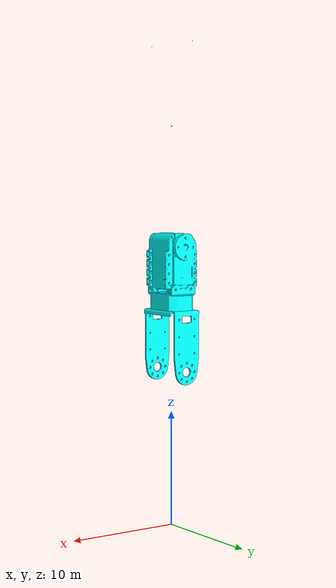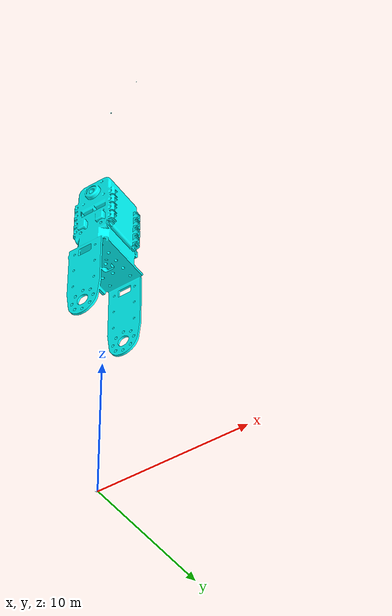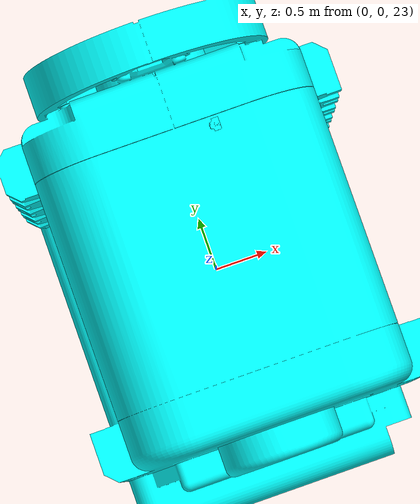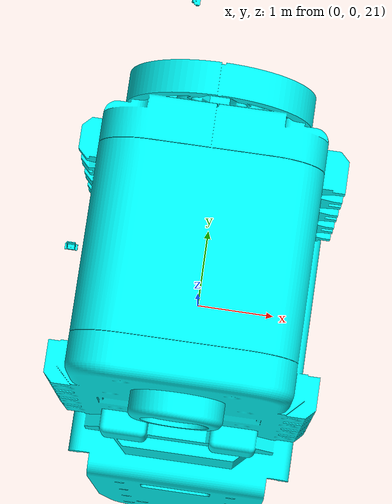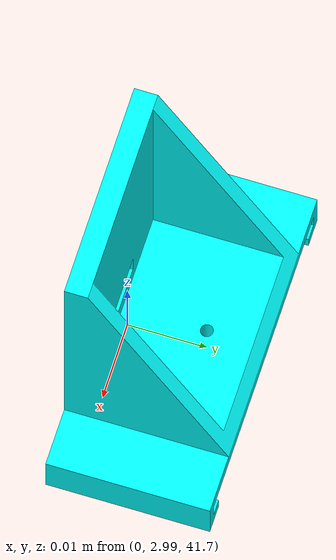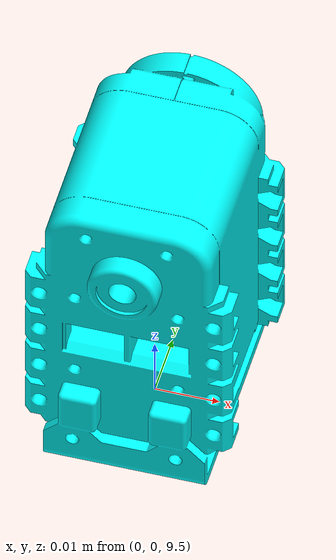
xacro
<?xml version="1.0" ?>

<robot name="phantomX" xmlns:xacro="http://www.ros.org/wiki/xacro">

  <!-- Include -->
  <xacro:include filename="$(find interm_proyect_robotics)/urdf/link_joints.xacro" />
  <xacro:include filename="$(find interm_proyect_robotics)/urdf/robot_parametros.xacro" />
  <!-- END - Include -->

  <!-- Robot description -->

  <link name="base_link">

  </link>

  <joint name="joint_name" type="fixed">
    <parent link="base_link"/>
    <child link="${link_00_name}"/>
    <origin xyz="0.0 0.0 0.0" rpy="0.0 0.0 0.0"/>
  </joint>

  <xacro:m_link_mesh name="${link_00_name}"
    origin_xyz="0 0 0"
    origin_rpy="0 0 0"
    meshfile="package://interm_proyect_robotics/models/pincher/PincherBase_v8.stl"
    mass="15"
    ixx="0.001" ixy="0" ixz="0"
    iyy="0.002" iyz="0"
    izz="0.001"
  />
<!--mass="0.335"  -->
  <xacro:m_joint name="${joint_01_name}"
    type="revolute"
    axis_xyz="0 0 1"
    origin_rpy="0 0 0" origin_xyz="0 0 9.5"
    parent="${link_00_name}" child="${link_01_name}"
    limit_e="100" limit_l="-3.14" limit_u="3.14" limit_v="0.5"
  />

  <xacro:m_link_mesh name="${link_01_name}"
    origin_xyz="0 0 0"
    origin_rpy="0 0 0"
    meshfile="package://interm_proyect_robotics/models/pincher/ShoulderServo_v5.stl"
    mass="0.118"
    ixx="0.00" ixy="0" ixz="0"
    iyy="0.00" iyz="0"
    izz="0.00"
  />
  <xacro:m_joint name="${joint_02_name}"
    type="revolute"
    axis_xyz="0 1 0"
    origin_rpy="0 0 0" origin_xyz="0 0 4.2"
    parent="${link_01_name}" child="${link_02_name}"
    limit_e="100" limit_l="-2.2" limit_u="2.4" limit_v="0.5"
  />

  <xacro:m_link_mesh name="${link_02_name}"
    origin_xyz="0 0 0"
    origin_rpy="0 0 0"
    meshfile="package://interm_proyect_robotics/models/pincher/LowerArm_v2.stl"
    mass="0.162"
    ixx="0.0001" ixy="0" ixz="0"
    iyy="0.0001" iyz="0"
    izz="0.0"
  />
  <xacro:m_joint name="${joint_03_name}"
    type="revolute"
    axis_xyz="0 1 0"
    origin_rpy="0 0 0" origin_xyz="0 0 10.5"
    parent="${link_02_name}" child="${link_03_name}"
    limit_e="100" limit_l="-2.6" limit_u="2.6" limit_v="0.5"
  />

  <xacro:m_link_mesh name="${link_03_name}"
    origin_xyz="0 0 0"
    origin_rpy="0 0 0"
    meshfile="package://interm_proyect_robotics/models/pincher/UpperArm_v2.stl"
    mass="0.162"
    ixx="0.0001" ixy="0" ixz="0"
    iyy="0.0001" iyz="0"
    izz="0.0"
  />
  <xacro:m_joint name="${joint_04_name}"
    type="revolute"
    axis_xyz="0 1 0"
    origin_rpy="0 0 0" origin_xyz="0 0 10.5"
    parent="${link_03_name}" child="${link_04_name}"
    limit_e="100" limit_l="-1.9" limit_u="1.8" limit_v="0.5"
  />

  <xacro:m_link_mesh name="${link_04_name}"
    origin_xyz="0 0 0"
    origin_rpy="0 0 0"
    meshfile="package://interm_proyect_robotics/models/pincher/GripperBody_v4.stl"
    mass="0.160"
    ixx="0.0" ixy="0" ixz="0"
    iyy="0.0" iyz="0"
    izz="0.0"
  />

  <xacro:m_joint name="${joint_05_name}"
    type="prismatic"
    axis_xyz="0 1 0"
    origin_rpy="0 0 0" origin_xyz="0 -3 7"
    parent="${link_04_name}" child="${link_05_name}"
    limit_e="10" limit_l="0" limit_u="1.6" limit_v="5.0"
  />

  <xacro:m_link_mesh name="${link_05_name}"
    origin_xyz="0 0 0"
    origin_rpy="0 0 0"
    meshfile="package://interm_proyect_robotics/models/pincher/LeftFinger_v2.stl"
    mass="0.018"
    ixx="0.0" ixy="0" ixz="0"
    iyy="0.0" iyz="0"
    izz="0.0"
  />
  <xacro:m_joint_mimic name="${joint_06_name}"
    type="prismatic"
    axis_xyz="0 1 0"
    origin_rpy="0 0 3.14" origin_xyz="0 3 7"
    parent="${link_04_name}" child="${link_06_name}"
    limit_e="100" limit_l="0" limit_u="1.6" limit_v="0.5"
    mimic_joint="${joint_05_name}" m_multiplier="1" m_offset="0"
  />

  <xacro:m_link_mesh name="${link_06_name}"
    origin_xyz="0 0 0"
    origin_rpy="0 0 0"
    meshfile="package://interm_proyect_robotics/models/pincher/LeftFinger_v2.stl"
    mass="0.018"
    ixx="0.0" ixy="0" ixz="0"
    iyy="0.0" iyz="0"
    izz="0.0"
  />

   <!-- Gazebo Plugin -->
  <gazebo>
    <plugin name="gazebo_ros_control" filename="libgazebo_ros_control.so">
    </plugin>
  </gazebo>

  <!-- END - Robot description -->

</robot>

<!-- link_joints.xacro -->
<robot xmlns:xacro="http://www.ros.org/wiki/xacro">

 <xacro:macro name="m_joint" params="name type axis_xyz origin_rpy origin_xyz parent child limit_e limit_l limit_u limit_v">
    <joint name="${name}" type="${type}">
      <axis xyz="${axis_xyz}" />
      <limit effort="${limit_e}" lower="${limit_l}" upper="${limit_u}" velocity="${limit_v}" />
      <origin rpy="${origin_rpy}" xyz="${origin_xyz}" />
      <parent link="${parent}" />
      <child link="${child}" />
    </joint>
	<transmission name="trans_${name}">
	      <type>transmission_interface/SimpleTransmission</type>
	      <joint name="${name}">
		<hardwareInterface>hardware_interface/PositionJointInterface</hardwareInterface>
	      </joint>
	      <actuator name="motor_${name}">
		<hardwareInterface>hardware_interface/PositionJointInterface</hardwareInterface>
		<mechanicalReduction>1</mechanicalReduction>
	      </actuator>
	    </transmission>
 </xacro:macro>

 <xacro:macro name="m_joint_mimic" params="name type axis_xyz origin_rpy origin_xyz parent child limit_e limit_l limit_u limit_v mimic_joint m_multiplier m_offset">
  <joint name="${name}" type="${type}">
    <axis xyz="${axis_xyz}" />
    <limit effort="${limit_e}" lower="${limit_l}" upper="${limit_u}" velocity="${limit_v}" />
    <mimic joint="${mimic_joint}" multiplier="${m_multiplier}" offset="${m_offset}"/>
    <origin rpy="${origin_rpy}" xyz="${origin_xyz}" />
    <parent link="${parent}" />
    <child link="${child}" />
  </joint>
<transmission name="trans_${name}">
      <type>transmission_interface/SimpleTransmission</type>
      <joint name="${name}">
  <hardwareInterface>hardware_interface/PositionJointInterface</hardwareInterface>
      </joint>
      <actuator name="motor_${name}">
  <hardwareInterface>hardware_interface/PositionJointInterface</hardwareInterface>
  <mechanicalReduction>1</mechanicalReduction>
      </actuator>
    </transmission>
</xacro:macro>

 <xacro:macro name="m_link_mesh" params="name origin_xyz origin_rpy meshfile mass ixx ixy ixz iyy iyz izz">
    <link name="${name}">
      <inertial>
        <mass value="${mass}" />
        <origin rpy="${origin_rpy}" xyz="${origin_xyz}" />
        <inertia ixx="${ixx}" ixy="${ixy}" ixz="${ixz}" iyy="${iyy}" iyz="${iyz}" izz="${izz}" />
      </inertial>
      <collision>
        <origin rpy="${origin_rpy}" xyz="${origin_xyz}" />
        <geometry>
          <mesh filename="${meshfile}" scale="0.1 0.1 0.1"/>
        </geometry>
      </collision>
      <visual>
        <origin rpy="${origin_rpy}" xyz="${origin_xyz}" />
        <geometry>
          <mesh filename="${meshfile}" scale="0.1 0.1 0.1"/>
        </geometry>
        <material name="Cyan">
          <color rgba="0 1.0 1.0 1.0"/>
        </material>
      </visual>
    </link>
    <gazebo reference="${name}">
        <material>Gazebo/BlueGlow</material>
    </gazebo>
 </xacro:macro>

 <xacro:macro name="create_noa" params="name origin_rpy origin_xyz parent">
  <link name="${name}">
  </link>
  <joint name="Tool_${name}" type="fixed">
    <origin rpy="${origin_rpy}" xyz="${origin_xyz}"/>
    <parent link="${parent}"/>
    <child link="${name}"/>
  </joint>
 </xacro:macro>

</robot>

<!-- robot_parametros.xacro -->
<robot xmlns:xacro="http://www.ros.org/wiki/xacro">
  <xacro:property name="link_00_name" value="robot_base" />
  <xacro:property name="link_01_name" value="link_01" />
  <xacro:property name="link_02_name" value="link_02" />
  <xacro:property name="link_03_name" value="link_03" />
  <xacro:property name="link_04_name" value="link_04" />
  <xacro:property name="link_05_name" value="link_05" />
  <xacro:property name="link_06_name" value="link_06" />

  <xacro:property name="joint_01_name" value="joint_1" />
  <xacro:property name="joint_02_name" value="joint_2" />
  <xacro:property name="joint_03_name" value="joint_3" />
  <xacro:property name="joint_04_name" value="joint_4" />
  <xacro:property name="joint_05_name" value="joint_5" />
  <xacro:property name="joint_06_name" value="joint_6" />
</robot>
